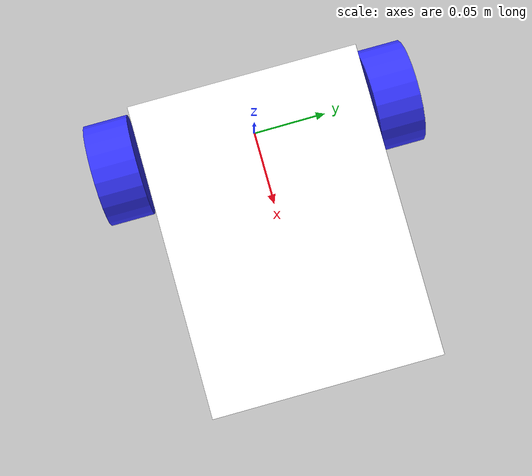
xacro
<?xml version="1.0"?>

<robot xmlns:xacro="http://www.ros.org/wiki/xacro">

    <xacro:include filename="inertia_macros.xacro"/>

    <material name="white">
    <color rgba="1 1 1 1"/>
    </material>

    <material name="orange">
        <color rgba="1 0.3 0.1 1"/>
    </material>

    <material name="blue">
        <color rgba="0.2 0.2 1 1"/>
    </material>

    <material name="black">
        <color rgba="0 0 0 1"/>
    </material>

    <material name="red">
        <color rgba="1 0 0 1"/>
    </material>

    <!-- base link -->

    <link name = "base_link">

    </link>

    <!-- BASE_FOOTPRINT LINK -->

    <joint name="base_footprint_joint" type="fixed">
        <parent link="base_link"/>
        <child link="base_footprint"/>
        <origin xyz="0 0 0" rpy="0 0 0"/>
    </joint>

    <link name="base_footprint">
    </link>

    <!-- chasis link -->

    <joint name = "chasis_joint" type = "fixed">
        <parent link="base_link"/>
        <child link="chasis"/>
        <origin xyz="-0.03 0 0"/>

    </joint>

    <link name="chasis">
        <visual>
            <origin xyz="0.1015 0 0.03" rpy="0 0 0"/>
            <geometry>
                <box size="0.203 0.15 0.05"/>
            </geometry>
            <material name="white"/>
        </visual>
        <collision>
            <origin xyz="0.1015 0 0.03" rpy="0 0 0"/>
            <geometry>
                <box size="0.203 0.15 0.05"/>
            </geometry>
        </collision>
        <xacro:inertial_box mass="0.5" x="0.203" y="0.15" z="0.05">
            <origin xyz="0.1015 0 0.03" rpy="0 0 0"/>
        </xacro:inertial_box>
    </link>
    <gazebo reference="chasis">
        <material>Gazebo/White</material>
    </gazebo>

    <!-- LEFT WHEEL -->

    <joint name="left_wheel_joint" type="continuous">
        <parent link="base_link"/>
        <child link="left_wheel"/>
        <origin xyz="0 0.095 0" rpy="-${pi/2} 0 0" />
        <axis xyz="0 0 1"/>
    </joint>

    <link name="left_wheel">
        <visual>
            <geometry>
                <cylinder length="0.03" radius="0.035" />
            </geometry>
            <material name="blue"/>
        </visual>
        <collision>
            <geometry>
                <sphere radius="0.035" />
            </geometry>
        </collision>
        <xacro:inertial_cylinder mass="0.1" length="0.03" radius="0.035">
            <origin xyz="0 0 0" rpy="0 0 0"/>
        </xacro:inertial_cylinder>
    </link>

    <gazebo reference="left_wheel">
        <material>Gazebo/Blue</material>
    </gazebo>

    <!-- RIGHT WHEEL -->

    <joint name="right_wheel_joint" type="continuous">
        <parent link="base_link"/>
        <child link="right_wheel"/>
        <origin xyz="0 -0.095 0" rpy="${pi/2} 0 0"/>
        <axis xyz="0 0 -1"/>
    </joint>

    <link name="right_wheel">
        <visual>
            <geometry>
                <cylinder length="0.03" radius="0.035" />
            </geometry>
            <material name="blue"/>
        </visual>
        <collision>
            <geometry>
                <sphere radius="0.035" />
            </geometry>
        </collision>
        <xacro:inertial_cylinder mass="0.1" length="0.03" radius="0.035">
            <origin xyz="0 0 0" rpy="0 0 0"/>
        </xacro:inertial_cylinder>
    </link>

    <gazebo reference="right_wheel">
        <material>Gazebo/Blue</material>
    </gazebo>

    <!-- CASTER WHEEL -->

    <joint name="caster_wheel_joint" type="fixed">
        <parent link="chasis"/>
        <child link="caster_wheel"/>
        <origin xyz="0.17 0 0" rpy="0 0 0"/>
    </joint>

    <link name="caster_wheel">
        <visual>
            <geometry>
                <sphere radius="0.03" />
            </geometry>
            <material name="black"/>
        </visual>
        <collision>
            <geometry>
                <sphere radius="0.03" />
            </geometry>
        </collision>
        <xacro:inertial_sphere mass="0.1" radius="0.03">
            <origin xyz="0 0 0" rpy="0 0 0"/>
        </xacro:inertial_sphere>
    </link>
    <gazebo reference="caster_wheel">
        <material>Gazebo/Black</material>
        <mu1 value="0.001"/>
        <mu2 value="0.001"/>
    </gazebo>

</robot>
